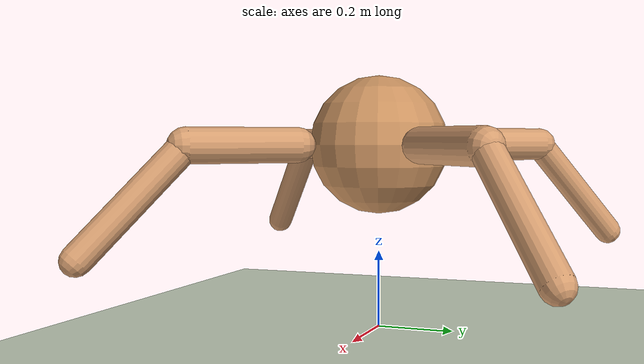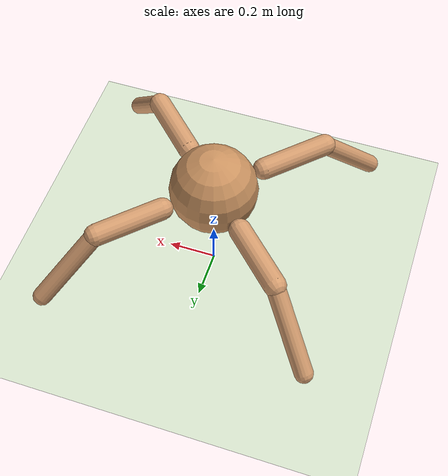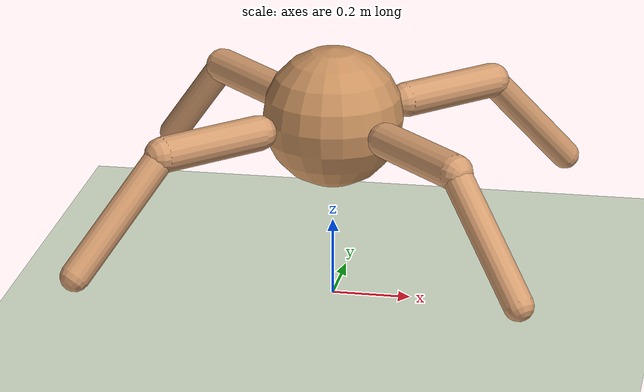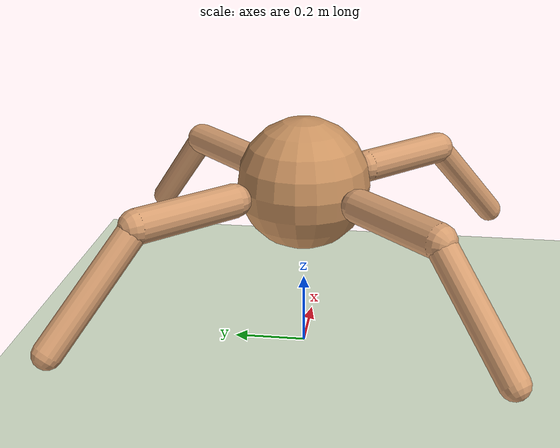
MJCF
<mujoco model="ant">
    <option timestep="0.005" gravity="0 0 -9.81"/>

    <default>
        <joint armature="0.01" damping="2.0" limited="true"/>
        <geom contype="2" conaffinity="1" condim="3" friction="1.2 0.2 0.1" density="300" margin="0.005"/>
    </default>

    <worldbody>
        <!-- Ground plane -->
        <geom type="plane" size="40 40 0.1" rgba="0.84 0.89 0.8 1" contype="1" conaffinity="2"/>

        <!-- Torso -->
        <body name="torso" pos="0 0 0.48">
            <joint name="root" type="free"/>
            <geom name="torso_geom" type="sphere" size="0.18" mass="2.0" rgba="0.8 0.58 0.38 1"/>

            <!-- Front Right Leg -->
            <body name="front_right_leg" pos="0.16 0.16 0">
                <joint name="hip_1" type="hinge" axis="0 0 1"/>
                <geom type="capsule" fromto="0 0 0 0.2 0.2 0" size="0.045" mass="0.35" rgba="0.84 0.62 0.44 1"/>

                <body name="front_right_foot" pos="0.2 0.2 0">
                    <joint name="ankle_1" type="hinge" axis="-1 1 0"/>
                    <geom type="capsule" fromto="0 0 0 0.18 0.18 -0.26" size="0.038" mass="0.25" rgba="0.84 0.62 0.44 1"/>
                </body>
            </body>

            <!-- Front Left Leg -->
            <body name="front_left_leg" pos="-0.16 0.16 0">
                <joint name="hip_2" type="hinge" axis="0 0 1"/>
                <geom type="capsule" fromto="0 0 0 -0.2 0.2 0" size="0.045" mass="0.35" rgba="0.84 0.62 0.44 1"/>

                <body name="front_left_foot" pos="-0.2 0.2 0">
                    <joint name="ankle_2" type="hinge" axis="1 1 0"/>
                    <geom type="capsule" fromto="0 0 0 -0.18 0.18 -0.26" size="0.038" mass="0.25" rgba="0.84 0.62 0.44 1"/>
                </body>
            </body>

            <!-- Back Right Leg -->
            <body name="back_right_leg" pos="0.16 -0.16 0">
                <joint name="hip_3" type="hinge" axis="0 0 1"/>
                <geom type="capsule" fromto="0 0 0 0.2 -0.2 0" size="0.045" mass="0.35" rgba="0.84 0.62 0.44 1"/>

                <body name="back_right_foot" pos="0.2 -0.2 0">
                    <joint name="ankle_3" type="hinge" axis="-1 -1 0"/>
                    <geom type="capsule" fromto="0 0 0 0.18 -0.18 -0.26" size="0.038" mass="0.25" rgba="0.84 0.62 0.44 1"/>
                </body>
            </body>

            <!-- Back Left Leg -->
            <body name="back_left_leg" pos="-0.16 -0.16 0">
                <joint name="hip_4" type="hinge" axis="0 0 1"/>
                <geom type="capsule" fromto="0 0 0 -0.2 -0.2 0" size="0.045" mass="0.35" rgba="0.84 0.62 0.44 1"/>

                <body name="back_left_foot" pos="-0.2 -0.2 0">
                    <joint name="ankle_4" type="hinge" axis="1 -1 0"/>
                    <geom type="capsule" fromto="0 0 0 -0.18 -0.18 -0.26" size="0.038" mass="0.25" rgba="0.84 0.62 0.44 1"/>
                </body>
            </body>
        </body>
    </worldbody>

    <actuator>
        <motor joint="hip_1" ctrlrange="-1 1" gear="70"/>
        <motor joint="ankle_1" ctrlrange="-1 1" gear="60"/>
        <motor joint="hip_2" ctrlrange="-1 1" gear="70"/>
        <motor joint="ankle_2" ctrlrange="-1 1" gear="60"/>
        <motor joint="hip_3" ctrlrange="-1 1" gear="70"/>
        <motor joint="ankle_3" ctrlrange="-1 1" gear="60"/>
        <motor joint="hip_4" ctrlrange="-1 1" gear="70"/>
        <motor joint="ankle_4" ctrlrange="-1 1" gear="60"/>
    </actuator>

    <sensor>
        <!-- Torso sensors -->
        <framepos objtype="body" objname="torso"/>
        <framequat objtype="body" objname="torso"/>
        <framelinvel objtype="body" objname="torso"/>
        <frameangvel objtype="body" objname="torso"/>

        <!-- Joint sensors -->
        <jointpos joint="hip_1"/>
        <jointpos joint="ankle_1"/>
        <jointpos joint="hip_2"/>
        <jointpos joint="ankle_2"/>
        <jointpos joint="hip_3"/>
        <jointpos joint="ankle_3"/>
        <jointpos joint="hip_4"/>
        <jointpos joint="ankle_4"/>

        <jointvel joint="hip_1"/>
        <jointvel joint="ankle_1"/>
        <jointvel joint="hip_2"/>
        <jointvel joint="ankle_2"/>
        <jointvel joint="hip_3"/>
        <jointvel joint="ankle_3"/>
        <jointvel joint="hip_4"/>
        <jointvel joint="ankle_4"/>
    </sensor>
</mujoco>
